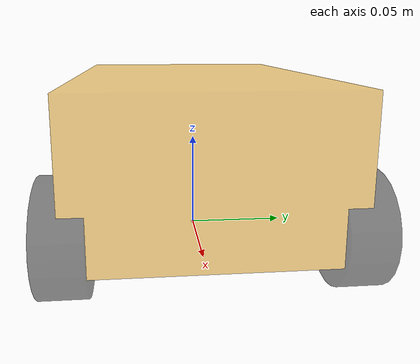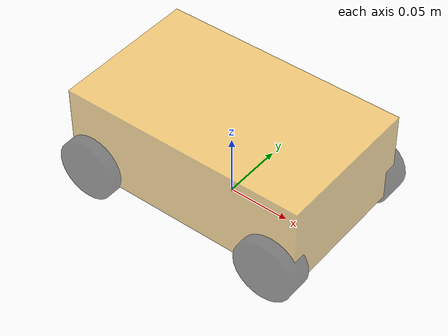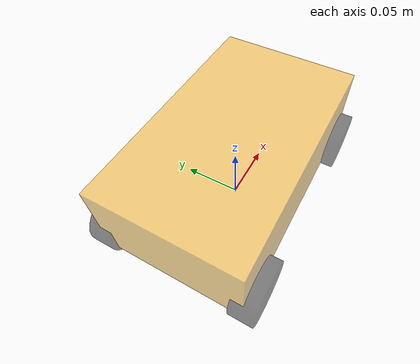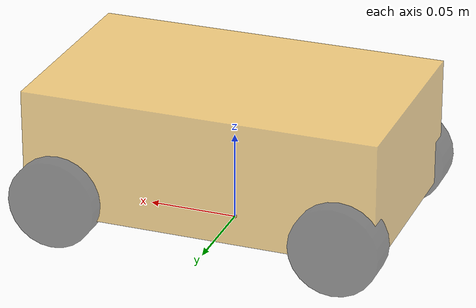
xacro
<?xml version="1.0"?>
<robot xmlns:xacro="http://www.ros.org/wiki/xacro">
    <xacro:include filename="$(find cpp06_urdf)/urdf/xacro/common_inertia.xacro"/>
    <!-- 1.需要声明变量 -->
    <xacro:property name="PI" value="3.1415927" />
    <xacro:property name="car_length" value="0.2" />
    <xacro:property name="car_width" value="0.12" />
    <xacro:property name="car_height" value="0.07" />
    <xacro:property name="wheel_radius" value="0.025" />
    <xacro:property name="wheel_length" value="0.02" />
    <!-- 轮胎关节偏移量 -->
    <xacro:property name="wheel_joint_x" value="0.08" />
    <xacro:property name="wheel_joint_y" value="${car_width / 2}" />
    <xacro:property name="wheel_joint_z" value="${-(car_height / 2 + distance - wheel_radius)}" />
    <!-- 离地间隙 -->
    <xacro:property name="distance" value="0.015" />
    <material name="yellow">
        <color rgba="0.9 0.6 0.0 0.5"/>
    </material>
    <material name="black">
        <color rgba="0.0 0.0 0.0 0.5"/>
    </material>
    <!-- 2.设置base_footprint -->
    <link name="base_footprint">
        <visual>
            <geometry>
                <sphere radius="0.001"/>
            </geometry>
        </visual>
    </link>
    <!-- 3.设置base_link -->
    <link name="base_link">
        <visual>
            <geometry>
                <box size="${car_length} ${car_width} ${car_height}"/>
            </geometry>
            <material name="yellow"/>
        </visual>
        <collision>
             <geometry>
                <box size="${car_length} ${car_width} ${car_height}"/>
            </geometry>
            <material name="yellow"/>
        </collision>
        <xacro:box_inertia m="1.0" d="${car_length}" w="${car_width}" h="${car_height}" />
    </link>
    <!-- 4.使用joint将二者相联 -->
    <joint name="base_link2base_footprint" type="fixed">
        <parent link="base_footprint"/>
        <child link="base_link"/>
        <origin xyz="0.0 0.0 ${car_height/2 + distance}"/>

    </joint>
    <!-- 5.定义车轮相关的宏 -->
    <!-- 宏函数创建规则,封装通用代码（可被复用的代码），变的数据以参数的方式暴露出去 -->
    <!-- link变量：name -->
    <!-- joint变量：name child-link origin(x y z)-->
    <xacro:macro name="wheel_func" params="link_name front_flag left_flag">
        <link name="${link_name}">
            <visual>
                <geometry>
                    <cylinder radius="${wheel_radius}" length="${wheel_length}"/>
                </geometry>
                <material name="black"/>
                <origin rpy="${PI/2} 0.0 0.0"/>
            </visual>
            <collision>
                <geometry>
                    <cylinder radius="${wheel_radius}" length="${wheel_length}"/>
                </geometry>
                <material name="black"/>
                <origin rpy="${PI/2} 0.0 0.0"/>
            </collision>
            <xacro:cylinder_inertia m="1.0" r="${wheel_radius}" h="${wheel_length}" />
        </link>
            <joint name="${link_name}2base_link" type="continuous">
            <parent link="base_link"/>
            <child link="${link_name}"/>
            <origin xyz="${wheel_joint_x * front_flag} ${wheel_joint_y * left_flag} ${wheel_joint_z}"/>
            <axis xyz="0 1 0"/>
        </joint>

        <gazebo reference="${link_name}">
            <!-- 切向的摩擦系数 -->
            <mu1 value="20.0" />
            <!-- 法向的摩擦系数 -->
            <mu2 value="20.0" />
            <!-- 提高了摩擦力的配置，减小了刚度系数的配置,轮子是橡胶的，刚度没那么大 -->
            <!-- 接触的刚度系数 -->
            <kp value="1000000000.0" />
            <!-- 阻尼系数 -->
            <kd value="1.0" />
        </gazebo>

    </xacro:macro>
    <!-- 6.调用宏生成多个车轮 -->
    <xacro:wheel_func link_name="front_left" front_flag="1" left_flag="1" />
    <xacro:wheel_func link_name="front_right" front_flag="1" left_flag="-1" />
    <xacro:wheel_func link_name="back_left" front_flag="-1" left_flag="1" />
    <xacro:wheel_func link_name="back_right" front_flag="-1" left_flag="-1" />
</robot>
